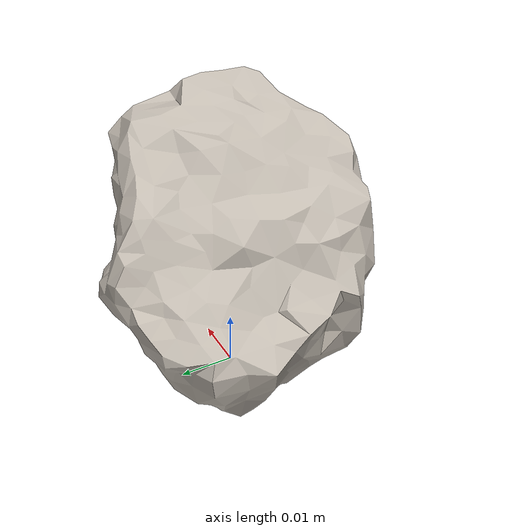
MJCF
<mujoco model="apollo_sample">
  <compiler assetdir="../.." />
  <asset>
    <mesh name="part_0" file="space/apollo_sample/part_0.obj" />
    <material name="material_0" rgba="1 1 1 1" shininess="0.0" texture="texture_0" />
    <texture name="texture_0" type="2d" file="space/apollo_sample/diffuse_0.png" />
  </asset>
  <worldbody>
    <body name="asset_root">
      <inertial pos="0 0 0.02571231033653021" mass="0.1" diaginertia="3.96820824e-05 4.04825608e-05 3.60897831e-05" />
      <geom name="part_0" type="mesh" mesh="part_0" material="material_0" contype="0" conaffinity="0" mass="0" />
    </body>
  </worldbody>
</mujoco>
